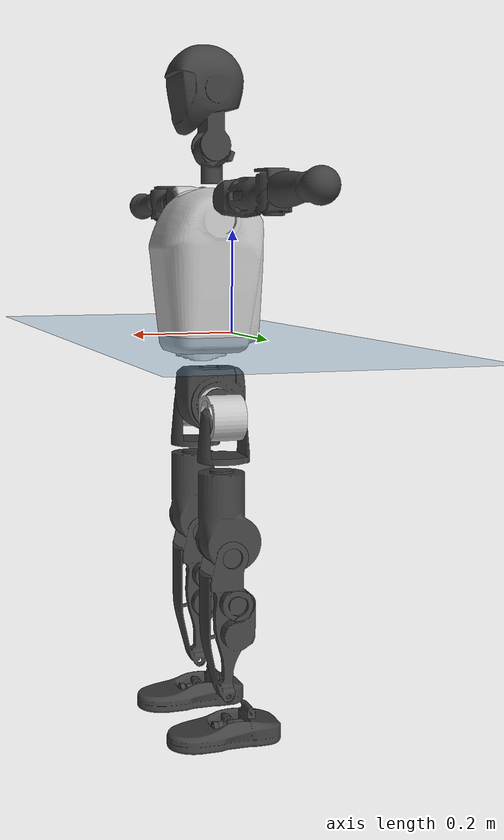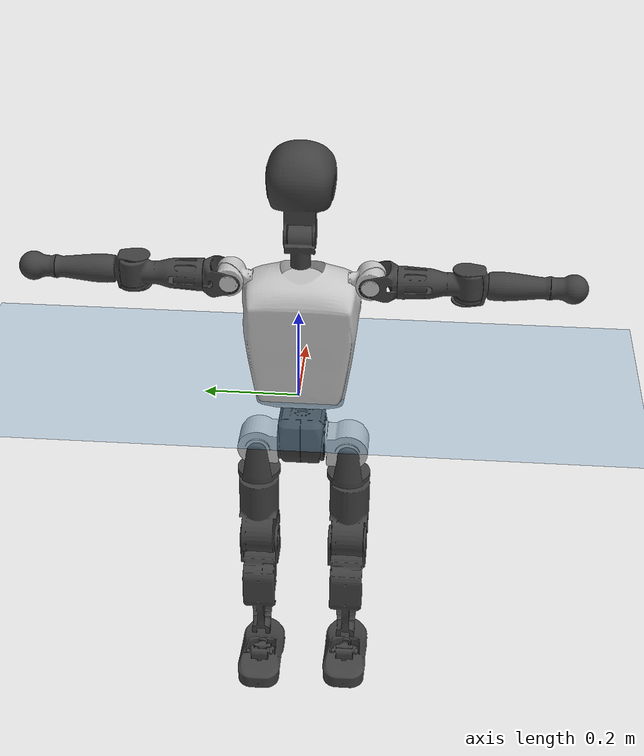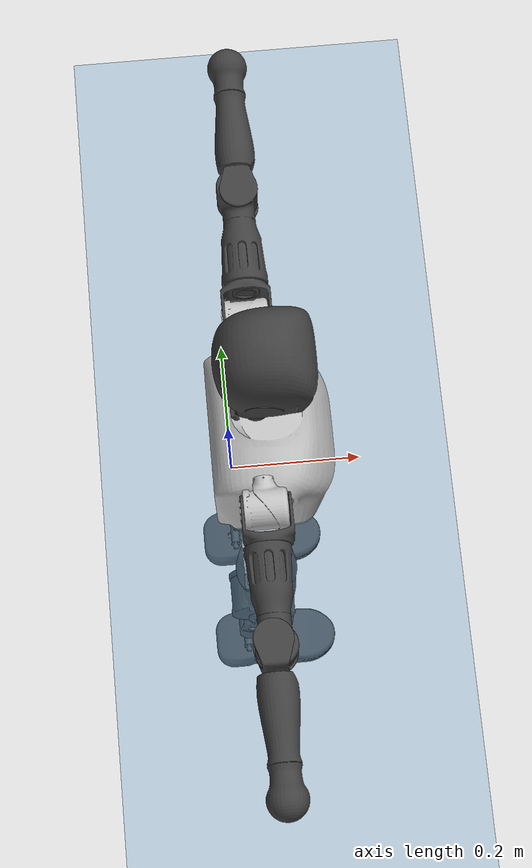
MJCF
<mujoco model="T1">
  <compiler angle="radian" assetdir="assets" balanceinertia="true" inertiafromgeom="false"/>

  <option timestep="0.005" density="1.2" viscosity="2e-05"/>

  <size nkey="1"/>

  <visual>
    <quality shadowsize="8192"/>
    <map shadowclip="0.5"/>
  </visual>

  <default>
    <default class="/">
      <joint armature="0.01" damping="0.01" frictionloss="0.1"/>
      <geom contype="0" conaffinity="0" group="1" solref="-1000 -80"/>
      <site size="0.01 0.005 0.005" group="5"/>
      <general forcelimited="true" biastype="affine" gainprm="25" biasprm="0 -25 -0.6"/>
      <default class="t1">
        <geom rgba="0.25 0.25 0.25 1"/>
        <default class="visual">
          <geom type="mesh" group="2"/>
        </default>
        <default class="collision">
          <geom group="3"/>
        </default>
        <default class="foot">
          <geom size="0.1115 0.05 0.015" type="box" condim="6" group="4" priority="1" solimp="0.015 1 0.015"/>
        </default>
        <default class="reward_collision_sphere">
          <geom group="5" rgba="1 0 0 1"/>
        </default>
      </default>
    </default>
  </default>

  <asset>
    <texture type="skybox" colorspace="auto" name="//unnamed_texture_0" builtin="gradient" rgb1="0.95 0.95 0.95" rgb2="0.95 0.95 0.95" width="100" height="600"/>
    <texture type="2d" colorspace="auto" name="texplane" builtin="checker" rgb1="0.345 0.575 0.748" rgb2="0.345 0.575 0.748" markrgb="1 1 1" width="512" height="512"/>
    <material name="MatPlane" class="/" texture="texplane" texuniform="true" texrepeat="2 2" specular="0.9"/>
    <mesh name="Trunk" class="/" file="Trunk.stl"/>
    <mesh name="H1" class="/" file="H1.stl"/>
    <mesh name="H2" class="/" file="H2.stl"/>
    <mesh name="AL1" class="/" file="AL1.stl"/>
    <mesh name="AL2" class="/" file="AL2.stl"/>
    <mesh name="AL3" class="/" file="AL3.stl"/>
    <mesh name="left_hand_link" class="/" file="left_hand_link.stl"/>
    <mesh name="AR1" class="/" file="AR1.stl"/>
    <mesh name="AR2" class="/" file="AR2.stl"/>
    <mesh name="AR3" class="/" file="AR3.stl"/>
    <mesh name="right_hand_link" class="/" file="right_hand_link.stl"/>
    <mesh name="Waist" class="/" file="Waist.stl"/>
    <mesh name="Hip_Pitch_Left" class="/" file="Hip_Pitch_Left.stl"/>
    <mesh name="Hip_Roll_Left" class="/" file="Hip_Roll_Left.stl"/>
    <mesh name="Hip_Yaw_Left" class="/" file="Hip_Yaw_Left.stl"/>
    <mesh name="Shank_Left" class="/" file="Shank_Left.stl"/>
    <mesh name="Ankle_Cross_Left" class="/" file="Ankle_Cross_Left.stl"/>
    <mesh name="left_foot_link" class="/" file="left_foot_link.stl"/>
    <mesh name="Hip_Pitch_Right" class="/" file="Hip_Pitch_Right.stl"/>
    <mesh name="Hip_Roll_Right" class="/" file="Hip_Roll_Right.stl"/>
    <mesh name="Hip_Yaw_Right" class="/" file="Hip_Yaw_Right.stl"/>
    <mesh name="Shank_Right" class="/" file="Shank_Right.stl"/>
    <mesh name="Ankle_Cross_Right" class="/" file="Ankle_Cross_Right.stl"/>
    <mesh name="right_foot_link" class="/" file="right_foot_link.stl"/>
  </asset>

  <worldbody>
    <geom name="floor" class="/" size="100 100 0.125" type="plane" group="0" material="MatPlane"/>
    <light name="toplight_shadow" class="/" pos="0 0 5" dir="0.0990148 0.0990148 -0.990148" type="directional" ambient="0.04 0.04 0.04" diffuse="0.55 0.55 0.55" specular="0.12 0.12 0.12"/>
    <light name="toplight_fill" class="/" pos="0 0 5" dir="0.0990148 0.0990148 -0.990148" type="directional" castshadow="false" ambient="0.04 0.04 0.04" diffuse="0.3 0.3 0.3" specular="0.08 0.08 0.08"/>
    <body name="trunk" childclass="t1" pos="0.000842781 -0.00258171 0.000148319" quat="1 0.00038287 1.50626e-05 -0.000824822">
      <inertial pos="0.0364921 -0.00328981 0.121771" quat="0.999938 0.00206883 -0.00995371 0.00447575" mass="9.32858" diaginertia="0.0171107 0.0501713 0.124542"/>
      <joint name="//unnamed_joint_0" type="free" armature="0" damping="0" frictionloss="0"/>
      <geom name="//unnamed_geom_1" class="visual" rgba="0.76 0.76 0.76 1" mesh="Trunk"/>
      <geom name="//unnamed_geom_2" class="collision" size="0.0706047 0.0941396 0.141209" pos="0.0430097 0 0.141691" type="box"/>
      <geom name="//unnamed_geom_3" class="reward_collision_sphere" size="0.108261" pos="0.0430097 0 0.118076"/>
      <geom name="//unnamed_geom_4" class="reward_collision_sphere" size="0.0141209" pos="0.0430097 0.078761 0"/>
      <geom name="//unnamed_geom_5" class="reward_collision_sphere" size="0.0141209" pos="0.0430097 -0.078761 0"/>
      <geom name="//unnamed_geom_6" class="reward_collision_sphere" size="0.0141209" pos="0.0430097 0.0991462 0.212537"/>
      <geom name="//unnamed_geom_7" class="reward_collision_sphere" size="0.0141209" pos="0.0430097 -0.0991462 0.212537"/>
      <site name="imu" pos="0.0141168 0.00173375 -0.0141113" size="0.00941396"/>
      <camera name="track" pos="0 -1.8532 0" quat="0.707107 0.707107 0 0" mode="trackcom"/>
      <camera name="ego_camera" pos="0.087453 0 0.495919" quat="-0.5 -0.5 0.5 0.5"/>
      <body name="H1" pos="0.0411599 0.00213164 0.288574" quat="1 -0.000763628 -0.000573609 -0.000121829">
        <inertial pos="-0.00417916 1.55278e-05 0.0701703" quat="0.759396 -0.0189739 0.00539669 0.65033" mass="0.379526" diaginertia="4.68738e-05 0.000154519 0.000328712"/>
        <joint name="AAHead_yaw" pos="0 0 0" axis="-0.0084914 0.00233915 0.999961" stiffness="0.00231945" range="-1.59171 1.57905" armature="0.00806316" damping="0.0118478" frictionloss="0.0919943"/>
        <geom name="//unnamed_geom_8" class="visual" mesh="H1"/>
        <body name="H2" pos="0.00195204 0.00156071 0.071056" quat="1 -9.56916e-05 -6.22747e-05 -2.02555e-05">
          <inertial pos="0.00711161 0.00291329 0.117229" quat="0.988244 0.108179 -0.0744984 -0.0782315" mass="0.536116" diaginertia="0.000401593 0.00135126 0.00400331"/>
          <joint name="Head_pitch" pos="0 0 0" axis="0.00248668 -0.999941 0.0105842" range="-1.21662 0.349973" armature="0.00860585" damping="0.0102433" frictionloss="0.0975604"/>
          <geom name="//unnamed_geom_9" class="visual" mesh="H2"/>
          <geom name="//unnamed_geom_10" class="collision" size="0.0753117" pos="0.00716828 0 0.129884"/>
          <geom name="//unnamed_geom_11" class="reward_collision_sphere" size="0.0847256" pos="0.0143366 0 0.118076"/>
        </body>
      </body>
      <body name="AL1" pos="0.0402941 0.100651 0.257343" quat="1 -1.00592e-05 0.000287353 0.00015349">
        <inertial pos="-0.00230152 0.0402657 -0.00107232" quat="0.505464 0.499277 -0.50144 0.493748" mass="0.443729" diaginertia="0.000260994 0.000891003 0.000652095"/>
        <joint name="Left_Shoulder_Pitch" pos="0 0 0" axis="-0.00819988 0.999966 -0.000385302" stiffness="0.0083714" range="-3.31301 1.17009" armature="0.00951738" damping="0.0100438" frictionloss="0.0961164"/>
        <geom name="//unnamed_geom_12" class="visual" rgba="0.76 0.76 0.76 1" mesh="AL1"/>
        <body name="AL2" pos="0.000897541 0.0442343 -0.00289351" quat="1 -3.90802e-06 3.0447e-06 1.93491e-06">
          <inertial pos="0.00518804 0.0325919 -0.00266132" quat="0.484289 0.506738 -0.499575 0.509024" mass="0.132283" diaginertia="7.63935e-05 0.000236952 0.000403194"/>
          <joint name="Left_Shoulder_Roll" pos="0 0 0" axis="-0.999933 0.00940067 -0.00672767" range="-1.56358 1.72561" armature="0.00937326" damping="0.00917157" frictionloss="0.0920461"/>
          <geom name="//unnamed_geom_13" class="visual" mesh="AL2"/>
          <body name="AL3" pos="0.00101769 0.0565386 0.00250258" quat="1 -0.000228681 -0.000224562 9.52551e-05">
            <inertial pos="-0.00342851 0.0789643 -0.000790947" quat="0.702842 0.711322 -0.00303324 -0.00503612" mass="0.856596" diaginertia="0.00252007 0.00876762 0.00141561"/>
            <joint name="Left_Elbow_Pitch" pos="0 0 0" axis="-0.000420922 -0.999995 0.00326672" range="-2.30146 2.27656" armature="0.0093922" damping="0.0130443" frictionloss="0.10058"/>
            <geom name="//unnamed_geom_14" class="visual" mesh="AL3"/>
            <geom name="//unnamed_geom_15" class="collision" size="0.0282419 0.0706047" pos="0 0.04633 0" quat="0.707105 0.707108 0 0" type="cylinder"/>
            <geom name="//unnamed_geom_16" class="reward_collision_sphere" size="0.0338903"/>
            <body name="left_hand_link" pos="0.00241114 0.139411 0.00333468" quat="1 0.000145373 -4.16397e-06 5.1727e-05">
              <inertial pos="0.00190358 0.0986797 -0.00188461" quat="0.702972 0.711214 0.00159629 0.00162643" mass="0.273018" diaginertia="0.00154988 0.00558302 0.000510861"/>
              <joint name="Left_Elbow_Yaw" pos="0 0 0" axis="-0.00763688 0.0037147 0.999964" range="-2.44284 -0.00927008" armature="0.0108785" damping="0.0237151" frictionloss="0.0941974"/>
              <geom name="//unnamed_geom_17" class="visual" mesh="left_hand_link"/>
              <geom name="//unnamed_geom_18" class="collision" size="0.0282419 0.0823722" pos="0 0.120458 0" quat="0.707105 0.707108 0 0" type="cylinder"/>
              <geom name="//unnamed_geom_19" class="reward_collision_sphere" size="0.0470698"/>
              <geom name="//unnamed_geom_20" class="reward_collision_sphere" size="0.0329489" pos="0 0.101926 0"/>
              <geom name="//unnamed_geom_21" class="reward_collision_sphere" size="0.0329489" pos="0 0.199219 0"/>
            </body>
          </body>
        </body>
      </body>
      <body name="AR1" pos="0.0427705 -0.0951357 0.259412" quat="1 -0.000122851 0.000649107 0.000201877">
        <inertial pos="-0.000356888 -0.0441866 0.0023007" quat="0.504247 0.495464 -0.50444 0.495773" mass="0.450098" diaginertia="0.000254985 0.000913154 0.000681509"/>
        <joint name="Right_Shoulder_Pitch" pos="0 0 0" axis="-0.000958276 -0.999989 -0.00449147" range="-1.16949 3.31905" armature="0.00871221" damping="0.0203008" frictionloss="0.0832362"/>
        <geom name="//unnamed_geom_22" class="visual" rgba="0.76 0.76 0.76 1" mesh="AR1"/>
        <body name="AR2" pos="0.000525121 -0.0443889 -0.00183851" quat="0.999999 -0.000912532 0.000492114 0.000868608">
          <inertial pos="0.000603219 -0.0336179 -8.88786e-05" quat="0.513204 0.482463 -0.522324 0.480654" mass="0.129287" diaginertia="7.3041e-05 0.000235177 0.000388598"/>
          <joint name="Right_Shoulder_Roll" pos="0 0 0" axis="-0.999991 0.00176447 -0.00382993" range="-1.78688 1.52304" armature="0.00948499" damping="0" frictionloss="0.0979055"/>
          <geom name="//unnamed_geom_23" class="visual" mesh="AR2"/>
          <body name="AR3" pos="-0.00351026 -0.0560972 0.00102358" quat="0.999999 -0.000316753 0.000709081 0.000802996">
            <inertial pos="0.000467324 -0.0801356 0.00244504" quat="0.707843 0.706369 0.000332736 -0.000637006" mass="0.845753" diaginertia="0.00245512 0.00855025 0.00138661"/>
            <joint name="Right_Elbow_Pitch" pos="0 0 0" axis="0.000516262 0.999912 -0.0132657" range="-2.30844 2.25935" armature="0.00922923" damping="0.0101306" frictionloss="0.106115"/>
            <geom name="//unnamed_geom_24" class="visual" mesh="AR3"/>
            <geom name="//unnamed_geom_25" class="collision" size="0.0282419 0.0706047" pos="0 -0.04633 0" quat="0.707105 0.707108 0 0" type="cylinder"/>
            <geom name="//unnamed_geom_26" class="reward_collision_sphere" size="0.0338903"/>
            <body name="right_hand_link" pos="-0.00385695 -0.139081 0.00187496" quat="0.999999 0.000803553 0.000477022 -0.000930837">
              <inertial pos="0.000928126 -0.0996614 -0.00136486" quat="0.706688 0.707521 0.000826187 -0.00232402" mass="0.273418" diaginertia="0.0015135 0.00529145 0.00049816"/>
              <joint name="Right_Elbow_Yaw" pos="0 0 0" axis="0.00240506 -0.00227694 0.999995" range="-0.00453566 2.39239" armature="0.00864929" damping="0.0111021" frictionloss="0.0953851"/>
              <geom name="//unnamed_geom_27" class="visual" mesh="right_hand_link"/>
              <geom name="//unnamed_geom_28" class="collision" size="0.0282419 0.0823722" pos="0 -0.120458 0" quat="0.707105 0.707108 0 0" type="cylinder"/>
              <geom name="//unnamed_geom_29" class="reward_collision_sphere" size="0.0470698"/>
              <geom name="//unnamed_geom_30" class="reward_collision_sphere" size="0.0329489" pos="0 -0.101926 0"/>
              <geom name="//unnamed_geom_31" class="reward_collision_sphere" size="0.0329489" pos="0 -0.199219 0"/>
            </body>
          </body>
        </body>
      </body>
      <body name="Waist" pos="0.0434971 -0.00176705 -0.133455" quat="1 0.000157341 -0.000138237 0.000134935">
        <inertial pos="0.00274441 0.00211979 0.00933048" quat="0.981863 -0.00347294 -0.189161 0.0123215" mass="2.01273" diaginertia="0.00096626 0.00337288 0.0101453"/>
        <joint name="Waist" pos="0 0 0" axis="0.00788169 0.00126011 0.999968" range="-1.61814 1.52763" armature="0.00880355" damping="0.00557726" frictionloss="0.107235"/>
        <geom name="//unnamed_geom_32" class="visual" mesh="Waist"/>
        <body name="Hip_Pitch_Left" pos="0.00423137 0.0961869 -0.00113679" quat="1 -0.000705683 0.000115646 0.000404901">
          <inertial pos="-0.00120831 -0.0077557 -0.0235804" quat="0.976883 0.213268 0.014727 -0.000302322" mass="0.814676" diaginertia="0.000331108 0.000968468 0.00278776"/>
          <joint name="Left_Hip_Pitch" pos="0 0 0" axis="0.0071791 0.999869 0.0145044" stiffness="0.0200443" range="-1.80331 1.61809" armature="0.0090306" damping="0" frictionloss="0.0930062"/>
          <geom name="//unnamed_geom_33" class="visual" rgba="0.76 0.76 0.76 1" mesh="Hip_Pitch_Left"/>
          <body name="Hip_Roll_Left" pos="0.00195001 0.00100695 -0.0266374" quat="1 -7.06647e-05 0.00016239 -0.000175773">
            <inertial pos="0.00124931 -0.000239672 -0.0658637" quat="0.706989 -0.00218902 -0.00453807 0.707207" mass="0.327471" diaginertia="0.000348238 0.00103738 0.00119255"/>
            <joint name="Left_Hip_Roll" pos="0 0 0" axis="-0.9999 -0.00924873 -0.0107363" range="-1.61134 0.237879" armature="0.00908799" damping="0.0183394" frictionloss="0.0897853"/>
            <geom name="//unnamed_geom_34" class="visual" mesh="Hip_Roll_Left"/>
            <geom name="//unnamed_geom_35" class="reward_collision_sphere" size="0.0517768"/>
            <body name="Hip_Yaw_Left" pos="0.00188319 0.00155806 -0.0973214" quat="1 -0.000132319 0.000284722 0.000238026">
              <inertial pos="-0.00734351 -0.000848948 -0.103949" quat="0.697697 -0.0449411 -0.0351013 0.71412" mass="1.80401" diaginertia="0.00512018 0.0175166 0.00633741"/>
              <joint name="Left_Hip_Yaw" pos="0 0 0" axis="0.00061614 -0.000457774 -1" stiffness="0.00342976" range="-0.999117 1.0194" armature="0.0108345" damping="0.0101898" frictionloss="0.0965962"/>
              <geom name="//unnamed_geom_36" class="visual" mesh="Hip_Yaw_Left"/>
              <geom name="//unnamed_geom_37" class="collision" size="0.0470698 0.0753117" type="cylinder"/>
              <body name="Shank_Left" pos="-0.00914255 -0.000988295 -0.160173" quat="0.999999 0.000634179 -0.000257455 -0.00097669">
                <inertial pos="-0.00409052 0.000281672 -0.149242" quat="0.997593 0.00151908 -0.0236346 0.0651683" mass="1.42529" diaginertia="0.00650986 0.022375 0.00397183"/>
                <joint name="Left_Knee_Pitch" pos="0 0 0" axis="-0.0044334 0.99999 -0.000479688" stiffness="0.00427633" range="0.0555626 2.34436" armature="0.00916855" damping="0" frictionloss="0.0888336"/>
                <geom name="//unnamed_geom_38" class="visual" mesh="Shank_Left"/>
                <geom name="//unnamed_geom_39" class="collision" size="0.0470698 0.0706047" pos="0 0 -0.141691" type="cylinder"/>
                <geom name="//unnamed_geom_40" class="reward_collision_sphere" size="0.0611907"/>
                <body name="Ankle_Cross_Left" pos="-0.00279304 -0.00200812 -0.333223" quat="1 -0.000311516 1.7911e-05 0.000147974">
                  <inertial pos="-0.00432018 0.00183925 -0.00959543" quat="0.442546 0.552173 0.55203 0.441045" mass="0.0592004" diaginertia="5.70833e-06 1.73068e-05 2.60736e-05"/>
                  <joint name="Left_Ankle_Pitch" pos="0 0 0" axis="-0.00422401 0.999929 -0.0111422" stiffness="0.00966293" range="-0.928067 0.35698" armature="0.00833565" damping="0.0194008" frictionloss="0.107181"/>
                  <geom name="//unnamed_geom_41" class="visual" mesh="Ankle_Cross_Left"/>
                  <body name="left_foot_link" pos="-0.00165475 0.00235135 -0.0131452" quat="1 -0.000637171 0.000141685 -0.000160806">
                    <inertial pos="-0.00192202 9.08254e-05 -0.0125949" quat="0.0111385 0.622061 0.00744337 0.782854" mass="0.558358" diaginertia="0.000535032 0.00165738 0.00524754"/>
                    <joint name="Left_Ankle_Roll" pos="0 0 0" axis="-0.999997 -0.00188756 -0.00178031" range="-0.482403 0.40607" armature="0.0108234" damping="0.0181934" frictionloss="0.0851799"/>
                    <geom name="//unnamed_geom_42" class="visual" mesh="left_foot_link"/>
                    <geom name="left_foot" class="foot" size="0.105345 0.0424141 0.0147183" pos="0.00716828 0 -0.0177114"/>
                    <geom name="//unnamed_geom_44" class="reward_collision_sphere" size="0.0489526" pos="0.00716828 0 -0.0177114"/>
                    <geom name="//unnamed_geom_45" class="reward_collision_sphere" size="0.0282419" pos="0.0680986 -0.0213118 -0.0177114"/>
                    <geom name="//unnamed_geom_46" class="reward_collision_sphere" size="0.0282419" pos="-0.0501779 -0.0213118 -0.0177114"/>
                    <site name="left_foot" class="foot" pos="0.00716828 0 -0.0177114" size="0.00941396"/>
                  </body>
                </body>
              </body>
            </body>
          </body>
        </body>
        <body name="Hip_Pitch_Right" pos="0.000451373 -0.101044 0.00076498" quat="1 0.000418784 -0.000847672 -0.000225093">
          <inertial pos="0.00222096 0.00432395 -0.0182338" quat="0.972942 -0.230265 0.0177805 -0.00684512" mass="0.852799" diaginertia="0.000343131 0.00104352 0.00295654"/>
          <joint name="Right_Hip_Pitch" pos="0 0 0" axis="-0.00397067 -0.999991 -0.00124433" range="-1.60582 1.78679" armature="0.0108834" damping="0.00798973" frictionloss="0.0838588"/>
          <geom name="//unnamed_geom_47" class="visual" rgba="0.76 0.76 0.76 1" mesh="Hip_Pitch_Right"/>
          <body name="Hip_Roll_Right" pos="0.00128661 -0.00203011 -0.025256" quat="1 -0.000131928 7.60491e-05 7.62186e-06">
            <inertial pos="0.00251773 0.00167081 -0.060517" quat="0.710105 -0.00680997 -0.00468404 0.704047" mass="0.339716" diaginertia="0.000339938 0.0011082 0.00122052"/>
            <joint name="Right_Hip_Roll" pos="0 0 0" axis="-0.999873 0.0154962 0.00369106" stiffness="0.00274614" range="-0.202036 1.54839" armature="0.00917236" damping="0.00097659" frictionloss="0.0868873"/>
            <geom name="//unnamed_geom_48" class="visual" mesh="Hip_Roll_Right"/>
            <geom name="//unnamed_geom_49" class="reward_collision_sphere" size="0.0517768"/>
            <body name="Hip_Yaw_Right" pos="0.00167869 -0.00352577 -0.0946725" quat="0.999999 0.00104197 -0.000348615 5.83648e-05">
              <inertial pos="-0.0041933 -0.00348322 -0.102704" quat="0.717109 -0.0305428 -0.0346204 0.695431" mass="1.85249" diaginertia="0.00478878 0.0178579 0.00583953"/>
              <joint name="Right_Hip_Yaw" pos="0 0 0" axis="0.000448202 -0.00320338 -0.999995" stiffness="0.0124451" range="-0.99799 1.01418" armature="0.00804933" damping="0.0135187" frictionloss="0.0892647"/>
              <geom name="//unnamed_geom_50" class="visual" mesh="Hip_Yaw_Right"/>
              <geom name="//unnamed_geom_51" class="collision" size="0.0470698 0.0753117" type="cylinder"/>
              <body name="Shank_Right" pos="-0.00846662 0.00212057 -0.160069" quat="0.999999 -0.000702947 0.00132185 -0.000350835">
                <inertial pos="-0.00189159 -0.00153938 -0.14475" quat="0.999274 -0.00851352 -0.020849 -0.0307259" mass="1.41339" diaginertia="0.00670142 0.0231458 0.00455305"/>
                <joint name="Right_Knee_Pitch" pos="0 0 0" axis="-0.00127525 -0.999997 0.002249" range="-2.3528 0.0555338" armature="0.00933922" damping="0.017854" frictionloss="0.098848"/>
                <geom name="//unnamed_geom_52" class="visual" mesh="Shank_Right"/>
                <geom name="//unnamed_geom_53" class="collision" size="0.0470698 0.0706047" pos="0 0 -0.141691" type="cylinder"/>
                <geom name="//unnamed_geom_54" class="reward_collision_sphere" size="0.0611907"/>
                <body name="Ankle_Cross_Right" pos="0.00389934 0.00133839 -0.331434" quat="0.999999 -0.000111514 -3.50823e-05 0.00110915">
                  <inertial pos="-0.00156208 0.00278819 -0.00881605" quat="0.442559 0.551177 0.551549 0.442876" mass="0.0615105" diaginertia="5.47152e-06 1.76023e-05 2.52472e-05"/>
                  <joint name="Right_Ankle_Pitch" pos="0 0 0" axis="-0.00282884 -0.999914 -0.0127965" stiffness="0.00714652" range="-0.363098 0.879204" armature="0.00885001" damping="0.0121475" frictionloss="0.0967079"/>
                  <geom name="//unnamed_geom_55" class="visual" mesh="Ankle_Cross_Right"/>
                  <body name="right_foot_link" pos="0.0032266 -0.00233151 -0.0122434" quat="1 -8.8247e-05 0.000209103 -0.000160275">
                    <inertial pos="-0.00029348 0.00250202 -0.0107233" quat="0.00037684 0.629592 0.00578944 0.776904" mass="0.593822" diaginertia="0.000522589 0.00168126 0.00527858"/>
                    <joint name="Right_Ankle_Roll" pos="0 0 0" axis="-0.999998 5.10842e-06 0.00223495" stiffness="0.000387847" range="-0.434928 0.383979" armature="0.00904603" damping="0.00930136" frictionloss="0.0879033"/>
                    <geom name="//unnamed_geom_56" class="visual" mesh="right_foot_link"/>
                    <geom name="right_foot" class="foot" size="0.0970953 0.0494457 0.0145393" pos="0.00716828 0 -0.0177114"/>
                    <geom name="//unnamed_geom_58" class="reward_collision_sphere" size="0.0376558"/>
                    <geom name="//unnamed_geom_59" class="reward_collision_sphere" size="0.0282419" pos="0.00716828 0 -0.0177114"/>
                    <geom name="//unnamed_geom_60" class="reward_collision_sphere" size="0.0282419" pos="0.0680986 0.0213118 -0.0177114"/>
                    <geom name="//unnamed_geom_61" class="reward_collision_sphere" size="0.0282419" pos="-0.0501779 0.0213118 -0.0177114"/>
                    <site name="right_foot" class="foot" pos="0.00716828 0 -0.0177114" size="0.00941396"/>
                  </body>
                </body>
              </body>
            </body>
          </body>
        </body>
      </body>
    </body>
  </worldbody>

  <contact>
    <pair class="/" geom1="floor" geom2="left_foot" name="//unnamed_contact_0"/>
    <pair class="/" geom1="floor" geom2="right_foot" name="//unnamed_contact_1"/>
  </contact>

  <actuator>
    <general name="AAHead_yaw" class="/" joint="AAHead_yaw" forcerange="-6.27931 6.27931" gainprm="22.7735" biasprm="0 -22.7735 -0.594525"/>
    <general name="Head_pitch" class="/" joint="Head_pitch" forcerange="-6.91459 6.91459" gainprm="22.7735" biasprm="0 -22.7735 -0.594525"/>
    <general name="Left_Shoulder_Pitch" class="/" joint="Left_Shoulder_Pitch" forcerange="-16.5005 16.5005" gainprm="22.7735" biasprm="0 -22.7735 -0.594525"/>
    <general name="Left_Shoulder_Roll" class="/" joint="Left_Shoulder_Roll" forcerange="-16.5312 16.5312" gainprm="22.7735" biasprm="0 -22.7735 -0.594525"/>
    <general name="Left_Elbow_Pitch" class="/" joint="Left_Elbow_Pitch" forcerange="-15.4108 15.4108" gainprm="22.7735" biasprm="0 -22.7735 -0.594525"/>
    <general name="Left_Elbow_Yaw" class="/" joint="Left_Elbow_Yaw" forcerange="-17.0567 17.0567" gainprm="22.7735" biasprm="0 -22.7735 -0.594525"/>
    <general name="Right_Shoulder_Pitch" class="/" joint="Right_Shoulder_Pitch" forcerange="-17.0687 17.0687" gainprm="22.7735" biasprm="0 -22.7735 -0.594525"/>
    <general name="Right_Shoulder_Roll" class="/" joint="Right_Shoulder_Roll" forcerange="-16.6095 16.6095" gainprm="22.7735" biasprm="0 -22.7735 -0.594525"/>
    <general name="Right_Elbow_Pitch" class="/" joint="Right_Elbow_Pitch" forcerange="-15.2516 15.2516" gainprm="22.7735" biasprm="0 -22.7735 -0.594525"/>
    <general name="Right_Elbow_Yaw" class="/" joint="Right_Elbow_Yaw" forcerange="-15.1759 15.1759" gainprm="22.7735" biasprm="0 -22.7735 -0.594525"/>
    <general name="Waist" class="/" joint="Waist" forcerange="-25.5773 25.5773" gainprm="22.7735" biasprm="0 -22.7735 -0.594525"/>
    <general name="Left_Hip_Pitch" class="/" joint="Left_Hip_Pitch" forcerange="-43.8632 43.8632" gainprm="22.7735" biasprm="0 -22.7735 -0.594525"/>
    <general name="Left_Hip_Roll" class="/" joint="Left_Hip_Roll" forcerange="-25.4959 25.4959" gainprm="22.7735" biasprm="0 -22.7735 -0.594525"/>
    <general name="Left_Hip_Yaw" class="/" joint="Left_Hip_Yaw" forcerange="-25.497 25.497" gainprm="22.7735" biasprm="0 -22.7735 -0.594525"/>
    <general name="Left_Knee_Pitch" class="/" joint="Left_Knee_Pitch" forcerange="-60.3088 60.3088" gainprm="22.7735" biasprm="0 -22.7735 -0.594525"/>
    <general name="Left_Ankle_Pitch" class="/" joint="Left_Ankle_Pitch" forcerange="-19.9104 19.9104" gainprm="22.7735" biasprm="0 -22.7735 -0.594525"/>
    <general name="Left_Ankle_Roll" class="/" joint="Left_Ankle_Roll" forcerange="-13.001 13.001" gainprm="22.7735" biasprm="0 -22.7735 -0.594525"/>
    <general name="Right_Hip_Pitch" class="/" joint="Right_Hip_Pitch" forcerange="-41.065 41.065" gainprm="22.7735" biasprm="0 -22.7735 -0.594525"/>
    <general name="Right_Hip_Roll" class="/" joint="Right_Hip_Roll" forcerange="-30.4149 30.4149" gainprm="22.7735" biasprm="0 -22.7735 -0.594525"/>
    <general name="Right_Hip_Yaw" class="/" joint="Right_Hip_Yaw" forcerange="-25.3718 25.3718" gainprm="22.7735" biasprm="0 -22.7735 -0.594525"/>
    <general name="Right_Knee_Pitch" class="/" joint="Right_Knee_Pitch" forcerange="-50.3467 50.3467" gainprm="22.7735" biasprm="0 -22.7735 -0.594525"/>
    <general name="Right_Ankle_Pitch" class="/" joint="Right_Ankle_Pitch" forcerange="-19.445 19.445" gainprm="22.7735" biasprm="0 -22.7735 -0.594525"/>
    <general name="Right_Ankle_Roll" class="/" joint="Right_Ankle_Roll" forcerange="-15.4342 15.4342" gainprm="22.7735" biasprm="0 -22.7735 -0.594525"/>
  </actuator>

  <sensor>
    <gyro site="imu" name="imu_angular_velocity"/>
    <velocimeter site="imu" name="imu_linear_velocity"/>
    <framelinvel objtype="site" objname="left_foot" name="left_foot_global_linear_velocity"/>
    <framelinvel objtype="site" objname="right_foot" name="right_foot_global_linear_velocity"/>
  </sensor>

  <keyframe>
    <key name="home" qpos="0 0 0.6385 1 0 0 0 0 0 0 1.4 0 -0.4 0 -1.4 0 0.4 0 -0.4 0 0 0.8 -0.4 0 0.4 0 0 -0.8 0.4 0"/>
  </keyframe>
</mujoco>
